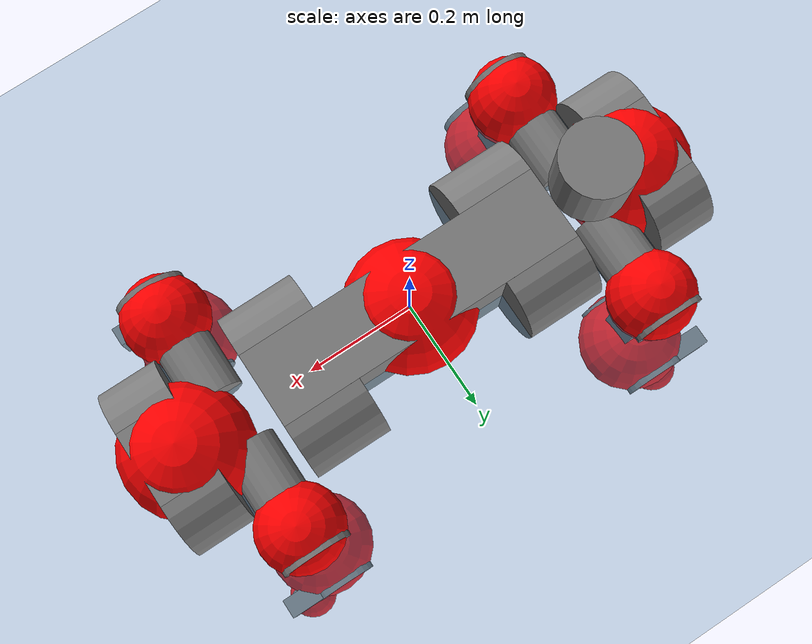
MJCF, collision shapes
<mujoco model="anymal_c">
  <compiler angle="radian" assetdir="assets" balanceinertia="true" inertiafromgeom="false"/>

  <option timestep="0.005" density="1.2" viscosity="2e-05"/>

  <size nkey="1"/>

  <visual>
    <quality shadowsize="8192"/>
    <map shadowclip="0.5"/>
  </visual>

  <default>
    <default class="/">
      <material specular="0" shininess="0.25"/>
      <geom contype="0" conaffinity="0" group="1" solref="-1000 -80"/>
      <site size="0.01 0.005 0.005" group="5"/>
      <general forcelimited="true" forcerange="-80 80" biastype="affine" gainprm="80" biasprm="0 -80 -2"/>
      <default class="anymal_c">
        <joint armature="0.01" damping="0.01" frictionloss="0.1"/>
        <default class="visual">
          <geom type="mesh" group="2"/>
          <default class="visual_zflip"/>
        </default>
        <default class="collision">
          <geom type="cylinder" group="3"/>
          <default class="foot">
            <geom size="0.03 0 0" type="sphere" condim="6" priority="1" friction="0.8 0.02 0.01" solimp="0.015 1 0.03"/>
          </default>
        </default>
      </default>
      <default class="reward_collision_sphere">
        <geom group="5" rgba="1 0 0 1"/>
      </default>
    </default>
  </default>

  <asset>
    <texture type="skybox" colorspace="auto" name="//unnamed_texture_0" builtin="gradient" rgb1="0.95 0.95 0.95" rgb2="0.95 0.95 0.95" width="100" height="600"/>
    <texture type="2d" colorspace="auto" name="texplane" builtin="checker" rgb1="0.345 0.575 0.748" rgb2="0.345 0.575 0.748" markrgb="1 1 1" width="512" height="512"/>
    <texture type="2d" colorspace="linear" name="base" file="base.png"/>
    <texture type="2d" colorspace="linear" name="top_shell" file="top_shell.png"/>
    <texture type="2d" colorspace="linear" name="bottom_shell" file="bottom_shell.png"/>
    <texture type="2d" colorspace="linear" name="remote" file="remote.png"/>
    <texture type="2d" colorspace="linear" name="hatch" file="hatch.png"/>
    <texture type="2d" colorspace="linear" name="handle" file="handle.png"/>
    <texture type="2d" colorspace="linear" name="face" file="face.png"/>
    <texture type="2d" colorspace="linear" name="battery" file="battery.png"/>
    <texture type="2d" colorspace="linear" name="lidar_cage" file="lidar_cage.png"/>
    <texture type="2d" colorspace="linear" name="depth_camera" file="depth_camera.png"/>
    <texture type="2d" colorspace="linear" name="wide_angle_camera" file="wide_angle_camera.png"/>
    <texture type="2d" colorspace="linear" name="lidar" file="lidar.png"/>
    <texture type="2d" colorspace="linear" name="drive" file="drive.png"/>
    <texture type="2d" colorspace="linear" name="hip_l" file="hip_l.png"/>
    <texture type="2d" colorspace="linear" name="shank_l" file="shank_l.png"/>
    <texture type="2d" colorspace="linear" name="foot" file="foot.png"/>
    <texture type="2d" colorspace="linear" name="thigh" file="thigh.png"/>
    <texture type="2d" colorspace="linear" name="shank_r" file="shank_r.png"/>
    <texture type="2d" colorspace="linear" name="hip_r" file="hip_r.png"/>
    <material name="MatPlane" class="/" texture="texplane" texuniform="true" texrepeat="2 2" specular="0.9" shininess="0.5"/>
    <material name="black_plastic" class="/" rgba="0.007 0.007 0.007 1"/>
    <material name="green" class="/" rgba="0.052 0.178 0.033 1"/>
    <material name="red" class="/" rgba="0.178 0.006 0.005 1"/>
    <material name="yellow" class="/" rgba="0.178 0.119 0.006 1"/>
    <material name="lwl" class="/" rgba="0.8 0.8 0.8 1"/>
    <material name="base" class="/" texture="base"/>
    <material name="top_shell" class="/" texture="top_shell"/>
    <material name="bottom_shell" class="/" texture="bottom_shell"/>
    <material name="hip_l" class="/" texture="hip_l"/>
    <material name="thigh" class="/" texture="thigh"/>
    <material name="shank_l" class="/" texture="shank_l"/>
    <material name="foot" class="/" texture="foot"/>
    <material name="hip_r" class="/" texture="hip_r"/>
    <material name="shank" class="/" texture="shank_r"/>
    <material name="hatch" class="/" texture="hatch"/>
    <material name="remote" class="/" texture="remote"/>
    <material name="handle" class="/" texture="handle"/>
    <material name="face" class="/" texture="face"/>
    <material name="depth_camera" class="/" texture="depth_camera"/>
    <material name="wide_angle_camera" class="/" texture="wide_angle_camera"/>
    <material name="battery" class="/" texture="battery"/>
    <material name="lidar_cage" class="/" texture="lidar_cage"/>
    <material name="lidar" class="/" texture="lidar"/>
    <material name="drive" class="/" texture="drive"/>
    <mesh name="base_0" class="/" file="base_0.obj"/>
    <mesh name="base_1" class="/" file="base_1.obj"/>
    <mesh name="base_2" class="/" file="base_2.obj"/>
    <mesh name="base_3" class="/" file="base_3.obj"/>
    <mesh name="base_4" class="/" file="base_4.obj"/>
    <mesh name="base_5" class="/" file="base_5.obj"/>
    <mesh name="top_shell" class="/" file="top_shell.obj"/>
    <mesh name="bottom_shell" class="/" file="bottom_shell.obj"/>
    <mesh name="remote" class="/" file="remote.obj"/>
    <mesh name="handle" class="/" file="handle.obj"/>
    <mesh name="face" class="/" file="face.obj"/>
    <mesh name="wide_angle_camera" class="/" file="wide_angle_camera.obj"/>
    <mesh name="depth_camera" class="/" file="depth_camera.obj"/>
    <mesh name="battery" class="/" file="battery.obj"/>
    <mesh name="lidar_cage" class="/" file="lidar_cage.obj"/>
    <mesh name="lidar" class="/" file="lidar.obj"/>
    <mesh name="drive" class="/" file="drive.obj"/>
    <mesh name="hip_l" class="/" file="hip_l.obj"/>
    <mesh name="thigh" class="/" file="thigh.obj"/>
    <mesh name="shank_l" class="/" file="shank_l.obj"/>
    <mesh name="foot" class="/" file="foot.obj"/>
    <mesh name="hip_r" class="/" file="hip_r.obj"/>
    <mesh name="hatch" class="/" file="hatch.obj"/>
    <mesh name="shank_r" class="/" file="shank_r.obj"/>
  </asset>

  <worldbody>
    <geom name="floor" class="/" size="100 100 0.125" type="plane" group="0" material="MatPlane"/>
    <light name="toplight_shadow" class="/" pos="0 0 5" dir="0.0990148 0.0990148 -0.990148" type="directional" ambient="0.04 0.04 0.04" diffuse="0.55 0.55 0.55" specular="0.12 0.12 0.12"/>
    <light name="toplight_fill" class="/" pos="0 0 5" dir="0.0990148 0.0990148 -0.990148" type="directional" castshadow="false" ambient="0.04 0.04 0.04" diffuse="0.3 0.3 0.3" specular="0.08 0.08 0.08"/>
    <body name="trunk" childclass="anymal_c" pos="-5.39195e-05 8.22232e-05 0.000726314" quat="1 2.18326e-05 5.71333e-05 5.33078e-05">
      <inertial pos="0.00261794 -0.000345994 0.0480216" quat="0.500189 0.499986 0.499907 0.499918" mass="17.6232" diaginertia="0.579801 0.576224 0.191305"/>
      <joint name="//unnamed_joint_0" type="free" armature="0" damping="0" frictionloss="0"/>
      <geom name="//unnamed_geom_1" class="visual" material="green" mesh="base_0"/>
      <geom name="//unnamed_geom_2" class="visual" material="yellow" mesh="base_1"/>
      <geom name="//unnamed_geom_3" class="visual" material="red" mesh="base_2"/>
      <geom name="//unnamed_geom_4" class="visual" material="black_plastic" mesh="base_3"/>
      <geom name="//unnamed_geom_5" class="visual" material="lwl" mesh="base_4"/>
      <geom name="//unnamed_geom_6" class="visual" material="base" mesh="base_5"/>
      <geom name="trunk_1" class="collision" size="0.285136 0.0688259 0.0884905" type="box"/>
      <geom name="trunk_2" class="collision" size="0.0884905 0.071284" pos="0.213963 0.0690836 0" quat="0.707107 0 0.707107 0"/>
      <geom name="trunk_3" class="collision" size="0.0884905 0.071284" pos="-0.213963 0.0690836 0" quat="0.707107 0 0.707107 0"/>
      <geom name="trunk_4" class="collision" size="0.0884905 0.071284" pos="0.213963 -0.0690836 0" quat="0.707107 0 0.707107 0"/>
      <geom name="trunk_5" class="collision" size="0.0884905 0.071284" pos="-0.213963 -0.0690836 0" quat="0.707107 0 0.707107 0"/>
      <geom name="//unnamed_geom_12" class="visual" material="top_shell" mesh="top_shell"/>
      <geom name="//unnamed_geom_13" class="visual" material="bottom_shell" mesh="bottom_shell"/>
      <geom name="//unnamed_geom_14" class="visual" material="remote" mesh="remote"/>
      <geom name="//unnamed_geom_15" class="visual" material="handle" mesh="handle"/>
      <geom name="//unnamed_geom_16" class="visual" pos="0.40776 0 0" quat="1 0 0 0" material="face" mesh="face"/>
      <geom name="trunk_6" class="collision" size="0.0540775 0.0688259 0.0884905" pos="0.461866 0 0" type="box"/>
      <geom name="//unnamed_geom_18" class="collision" size="0.0884905 0.0540775" pos="0.461866 0.0690836 0" quat="0.707107 0 0.707107 0"/>
      <geom name="//unnamed_geom_19" class="collision" size="0.0884905 0.0540775" pos="0.461866 -0.0690836 0" quat="0.707107 0 0.707107 0"/>
      <geom name="//unnamed_geom_20" class="visual" pos="0.454143 0 -0.028552" quat="0.965926 0 0.258819 0" material="depth_camera" mesh="depth_camera"/>
      <geom name="//unnamed_geom_21" class="visual" pos="0.504658 0 0.0146561" material="wide_angle_camera" mesh="wide_angle_camera"/>
      <geom name="//unnamed_geom_22" class="visual_zflip" pos="-0.40776 0 0" quat="0 0 0 1" material="face" mesh="face"/>
      <geom name="trunk_7" class="collision" size="0.0540775 0.0688259 0.0884905" pos="-0.461866 0 0" quat="0 0 0 1" type="box"/>
      <geom name="//unnamed_geom_24" class="collision" size="0.0884905 0.0540775" pos="-0.461866 -0.0690836 0" quat="0 -0.707107 0 0.707107"/>
      <geom name="//unnamed_geom_25" class="collision" size="0.0884905 0.0540775" pos="-0.461866 0.0690836 0" quat="0 -0.707107 0 0.707107"/>
      <geom name="//unnamed_geom_26" class="visual" pos="-0.454143 0 -0.028552" quat="0 -0.258819 0 0.965926" material="depth_camera" mesh="depth_camera"/>
      <geom name="//unnamed_geom_27" class="visual_zflip" pos="-0.504658 0 0.0146561" quat="0 0 0 1" material="wide_angle_camera" mesh="wide_angle_camera"/>
      <geom name="//unnamed_geom_28" class="visual" material="battery" mesh="battery"/>
      <geom name="//unnamed_geom_29" class="visual" pos="0 0.0755005 0.0284767" quat="0.683013 -0.183013 0.183013 0.683013" material="depth_camera" mesh="depth_camera"/>
      <geom name="//unnamed_geom_30" class="visual" pos="0 -0.0755005 0.0284767" quat="0.683013 0.183013 0.183013 -0.683013" material="depth_camera" mesh="depth_camera"/>
      <geom name="//unnamed_geom_31" class="visual" pos="-0.358081 0 0.071959" quat="1 0 0 0" material="lidar_cage" mesh="lidar_cage"/>
      <geom name="trunk_8" class="collision" size="0.0688259 0.0589937" pos="-0.358081 0 0.130701"/>
      <geom name="//unnamed_geom_33" class="visual" pos="-0.358081 1.24521e-06 0.139219" quat="0.707107 0 0 -0.707107" material="lidar" mesh="lidar"/>
      <geom name="//unnamed_geom_34" class="visual" pos="0.295023 0.102636 1.3584e-10" quat="0.258819 0.965926 0 0" material="drive" mesh="drive"/>
      <geom name="//unnamed_geom_35" class="visual" pos="0.295023 -0.102636 -1.3584e-10" quat="0.258819 -0.965926 0 0" material="drive" mesh="drive"/>
      <geom name="//unnamed_geom_36" class="visual" pos="-0.295023 0.102636 -1.3584e-10" quat="0 0 0.965926 -0.258819" material="drive" mesh="drive"/>
      <geom name="//unnamed_geom_37" class="visual" pos="-0.295023 -0.102636 1.3584e-10" quat="0 0 -0.965926 -0.258819" material="drive" mesh="drive"/>
      <geom name="//unnamed_geom_38" class="visual" pos="0.114114 0 0.0714695" quat="1 0 0 0" material="hatch" mesh="hatch"/>
      <geom name="//unnamed_geom_39" class="reward_collision_sphere" size="0.117987"/>
      <geom name="//unnamed_geom_40" class="reward_collision_sphere" size="0.117987" pos="0.442683 0 0"/>
      <geom name="//unnamed_geom_41" class="reward_collision_sphere" size="0.117987" pos="-0.442683 0 0"/>
      <site name="imu" pos="0.239547 0.00635195 0.046252" size="0.00983228"/>
      <camera name="track" pos="0 -1.97382 0" quat="0.707107 0.707107 0 0" mode="trackcom"/>
      <camera name="ego_camera" pos="0.442683 0 -0.0391614" quat="-0.5 -0.5 0.5 0.5"/>
      <body name="LF_HIP" pos="0.295781 0.10249 6.01669e-05" quat="0.258614 0.965981 -0.000448733 -0.000147177">
        <inertial pos="0.0560976 -0.0139546 -0.00780147" quat="-0.130518 0.71115 -0.131912 0.678108" mass="2.63931" diaginertia="0.00537879 0.00461143 0.00296604"/>
        <joint name="LF_HAA" pos="0 0 0" axis="1 7.22973e-05 2.48244e-05" range="-0.714788 0.471905" armature="0.0101947" damping="0.00412543" frictionloss="0.0957958"/>
        <geom name="//unnamed_geom_42" class="visual" pos="0 7.99084e-06 -1.31249e-06" quat="0.258819 -0.965926 0 0" material="hip_l" mesh="hip_l"/>
        <geom name="//unnamed_geom_43" class="visual" pos="0.058926 -0.0714403 -0.0411878" quat="0.183013 -0.683013 0.683013 0.183013" material="drive" mesh="drive"/>
        <geom name="//unnamed_geom_44" class="collision" size="0.0491614 0.0688259" pos="0.058926 -0.0118032 -0.00676023" quat="-0.353553 -0.612372 0.612372 -0.353553"/>
        <body name="LF_THIGH" pos="0.0591722 -0.0723252 -0.041891" quat="0.183009 -0.683004 0.683025 0.183003">
          <inertial pos="0.0297013 -4.86313e-05 -0.240111" quat="0.993092 -0.00470817 -0.0809728 0.0847857" mass="2.87478" diaginertia="0.0276185 0.0278965 0.00372621"/>
          <joint name="LF_HFE" pos="0 0 0" axis="0.999995 -0.00287206 -0.00164359" stiffness="9.13674e-05" range="-3.14613 3.14884" armature="0.0100598" damping="0.00955053" frictionloss="0.0974727"/>
          <geom name="//unnamed_geom_45" class="visual" pos="-6.30605e-05 -9.93687e-08 0" quat="0.707107 0 0 -0.707107" material="thigh" mesh="thigh"/>
          <geom name="//unnamed_geom_46" class="collision" size="0.0639098 0.0393291" pos="0.0393496 0 0" quat="0.5 0.5 -0.5 -0.5"/>
          <geom name="//unnamed_geom_47" class="collision" size="0.036871 0.0294968 0.138944" pos="0.0295122 0 -0.138351" quat="0.707107 0 0 -0.707107" type="box"/>
          <geom name="//unnamed_geom_48" class="visual" pos="0.0986691 0 -0.279025" quat="1 0 0 0" material="drive" mesh="drive"/>
          <geom name="//unnamed_geom_49" class="collision" size="0.0491614 0.0688259" pos="0.0298073 0 -0.279025" quat="0.707107 0 0.707107 0"/>
          <geom name="//unnamed_geom_50" class="reward_collision_sphere" size="0.0786582" pos="0.0245935 0 0"/>
          <body name="LF_SHANK" pos="0.0981377 -1.7401e-06 -0.279898" quat="1 6.38228e-05 -8.01757e-06 3.72409e-05">
            <inertial pos="0.00491444 -0.0604993 -0.0793784" quat="0.992993 -0.115608 -0.000166622 -0.0244889" mass="0.567846" diaginertia="0.00948094 0.00865751 0.00101266"/>
            <joint name="LF_KFE" pos="0 0 0" axis="1 0.000326696 0.000273172" range="-3.12483 3.13148" armature="0.00934742" damping="0.00701193" frictionloss="0.0940035"/>
            <geom name="//unnamed_geom_51" class="visual" pos="-2.05627e-05 -0.000109641 0" quat="0.707107 0 0 -0.707107" material="shank_l" mesh="shank_l"/>
            <geom name="LF_kfe_act" class="collision" size="0.0589937 0.0196646" pos="0.0196748 0 0" quat="0.5 0.5 -0.5 -0.5"/>
            <geom name="//unnamed_geom_53" class="collision" size="0.0565346 0.0331839 0.0186813" pos="0.0196748 -0.0567463 0" quat="0.5 0.5 -0.5 -0.5" type="box"/>
            <geom name="//unnamed_geom_54" class="visual" pos="0.0128378 -0.086834 -0.330884" quat="0.382683 0 0 -0.92388" material="foot" mesh="foot"/>
            <geom name="LF_calf" class="collision" size="0.0172065 0.138883" pos="0.0128378 -0.0867986 -0.165442" quat="0.707107 0 0 -0.707107"/>
            <geom name="LF_foot" class="foot" size="0.0318557" pos="0.0128378 -0.0867986 -0.308856" quat="0.707107 0 0 -0.707107"/>
            <geom name="//unnamed_geom_57" class="reward_collision_sphere" size="0.0983228" pos="-0.049187 0 0"/>
            <geom name="//unnamed_geom_58" class="reward_collision_sphere" size="0.0491614" pos="0.0128378 -0.0867986 -0.308856"/>
            <site name="LF_foot" class="foot" pos="0.0128378 -0.0867986 -0.308856" quat="0.707107 0 0 -0.707107" size="0.00983228"/>
          </body>
        </body>
      </body>
      <body name="RF_HIP" pos="0.296389 -0.103317 0.000619944" quat="0.25884 -0.96592 -5.85937e-05 -4.23782e-05">
        <inertial pos="0.0560121 0.0153443 -0.00828969" quat="0.1345 0.679276 0.128279 0.709957" mass="2.60363" diaginertia="0.00538554 0.00450167 0.00293051"/>
        <joint name="RF_HAA" pos="0 0 0" axis="1 7.39897e-05 0.000257944" stiffness="0.000633743" range="-0.50158 0.730153" armature="0.00980367" damping="0.0091979" frictionloss="0.0971093"/>
        <geom name="//unnamed_geom_59" class="visual" pos="0 -7.99077e-06 -1.31249e-06" quat="0.258819 0.965926 0 0" material="hip_r" mesh="hip_r"/>
        <geom name="//unnamed_geom_60" class="visual" pos="0.058926 0.0714403 -0.0411878" quat="0.183013 0.683013 0.683013 -0.183013" material="drive" mesh="drive"/>
        <geom name="//unnamed_geom_61" class="collision" size="0.0491614 0.0688259" pos="0.058926 0.0118032 -0.00676023" quat="-0.353553 0.612372 0.612372 0.353553"/>
        <body name="RF_THIGH" pos="0.0598349 0.0723129 -0.0407633" quat="0.18311 0.682964 0.683017 -0.183081">
          <inertial pos="0.0302524 0.000421778 -0.240401" quat="0.992804 -0.00525056 -0.0804835 0.0885157" mass="2.91102" diaginertia="0.0280203 0.0278327 0.00374636"/>
          <joint name="RF_HFE" pos="0 0 0" axis="1 -2.31793e-05 0.000144061" stiffness="0.00588825" range="-3.12223 3.12273" armature="0.00986756" damping="0.00925246" frictionloss="0.105149"/>
          <geom name="//unnamed_geom_62" class="visual" pos="-6.30605e-05 -9.93687e-08 0" quat="0.707107 0 0 -0.707107" material="thigh" mesh="thigh"/>
          <geom name="//unnamed_geom_63" class="collision" size="0.0639098 0.0393291" pos="0.0393496 0 0" quat="0.5 0.5 0.5 0.5"/>
          <geom name="//unnamed_geom_64" class="collision" size="0.036871 0.0294968 0.138944" pos="0.0295122 0 -0.138351" quat="0.707107 0 0 0.707107" type="box"/>
          <geom name="//unnamed_geom_65" class="visual" pos="0.0986691 0 -0.279025" quat="1 0 0 0" material="drive" mesh="drive"/>
          <geom name="//unnamed_geom_66" class="collision" size="0.0491614 0.0688259" pos="0.0298073 0 -0.279025" quat="0.707107 0 0.707107 0"/>
          <geom name="//unnamed_geom_67" class="reward_collision_sphere" size="0.0786582" pos="0.0245935 0 0"/>
          <body name="RF_SHANK" pos="0.0988733 -0.000469806 -0.279552" quat="1 -8.45645e-05 -4.18123e-05 -5.02438e-05">
            <inertial pos="0.00537509 0.0607922 -0.0782004" quat="0.993179 0.114594 0.00101515 0.0214982" mass="0.555502" diaginertia="0.00924432 0.00867047 0.00100169"/>
            <joint name="RF_KFE" pos="0 0 0" axis="1 0.000539948 -0.00033841" range="-3.11741 3.11913" armature="0.00988928" damping="0.0108573" frictionloss="0.0943332"/>
            <geom name="//unnamed_geom_68" class="visual" pos="-2.05626e-05 0.000109641 0" quat="0.707107 0 0 0.707107" material="shank" mesh="shank_r"/>
            <geom name="RF_kfe_act" class="collision" size="0.0589937 0.0196646" pos="0.0196748 0 0" quat="0.5 0.5 0.5 0.5"/>
            <geom name="//unnamed_geom_70" class="collision" size="0.0565346 0.0331839 0.0186813" pos="0.0196748 0.0567463 0" quat="0.5 0.5 0.5 0.5" type="box"/>
            <geom name="//unnamed_geom_71" class="visual" pos="0.0128378 0.086834 -0.330884" quat="0.382683 0 0 0.92388" material="foot" mesh="foot"/>
            <geom name="RF_calf" class="collision" size="0.0172065 0.138883" pos="0.0128378 0.0867986 -0.165442" quat="0.707107 0 0 0.707107"/>
            <geom name="RF_foot" class="foot" size="0.0280594" pos="0.0128378 0.0867986 -0.308856" quat="0.707107 0 0 0.707107"/>
            <geom name="//unnamed_geom_74" class="reward_collision_sphere" size="0.0983228" pos="-0.049187 0 0"/>
            <geom name="//unnamed_geom_75" class="reward_collision_sphere" size="0.0491614" pos="0.0128378 0.0867986 -0.308856"/>
            <site name="RF_foot" class="foot" pos="0.0128378 0.0867986 -0.308856" quat="0.707107 0 0 0.707107" size="0.00983228"/>
          </body>
        </body>
      </body>
      <body name="LH_HIP" pos="-0.295167 0.102503 -0.000169207" quat="5.53636e-05 0.000138962 0.965937 -0.258776">
        <inertial pos="0.0551159 0.0152649 -0.00849208" quat="0.138151 0.676388 0.127333 0.71218" mass="2.62549" diaginertia="0.00541647 0.00465658 0.00295314"/>
        <joint name="LH_HAA" pos="0 0 0" axis="1 -0.000373931 -0.000299434" range="-0.500527 0.695559" armature="0.00966128" damping="0.0129859" frictionloss="0.0998342"/>
        <geom name="//unnamed_geom_76" class="visual" pos="0 -7.99077e-06 -1.31249e-06" quat="-0.258819 -0.965926 0 0" material="hip_r" mesh="hip_r"/>
        <geom name="//unnamed_geom_77" class="visual" pos="0.058926 0.0714403 -0.0411878" quat="0.183013 0.683013 0.683013 -0.183013" material="drive" mesh="drive"/>
        <geom name="//unnamed_geom_78" class="collision" size="0.0491614 0.0688259" pos="0.058926 0.0118032 -0.00676023" quat="-0.353553 0.612372 0.612372 0.353553"/>
        <body name="LH_THIGH" pos="0.0590317 0.0709102 -0.0410215" quat="0.183133 0.683034 0.682927 -0.183132">
          <inertial pos="0.0304182 -0.000361243 -0.240839" quat="0.992719 -0.00549705 -0.0812449 0.0887617" mass="2.92258" diaginertia="0.0278663 0.0283325 0.00376774"/>
          <joint name="LH_HFE" pos="0 0 0" axis="0.999998 0.000614961 -0.00162688" range="-3.14152 3.13694" armature="0.0102638" damping="0.0128357" frictionloss="0.0968284"/>
          <geom name="//unnamed_geom_79" class="visual" pos="-6.30605e-05 -9.93687e-08 0" quat="0.707107 0 0 -0.707107" material="thigh" mesh="thigh"/>
          <geom name="//unnamed_geom_80" class="collision" size="0.0639098 0.0393291" pos="0.0393496 0 0" quat="0.5 0.5 -0.5 -0.5"/>
          <geom name="//unnamed_geom_81" class="collision" size="0.036871 0.0294968 0.138944" pos="0.0295122 0 -0.138351" quat="0.707107 0 0 -0.707107" type="box"/>
          <geom name="//unnamed_geom_82" class="visual" pos="0.0986691 0 -0.279025" quat="1 0 0 0" material="drive" mesh="drive"/>
          <geom name="//unnamed_geom_83" class="collision" size="0.0491614 0.0688259" pos="0.0298073 0 -0.279025" quat="0.707107 0 0.707107 0"/>
          <geom name="//unnamed_geom_84" class="reward_collision_sphere" size="0.0786582" pos="0.0245935 0 0"/>
          <body name="LH_SHANK" pos="0.0999973 -0.000863727 -0.279012" quat="1 0.00018561 5.14839e-05 6.83863e-05">
            <inertial pos="0.00540361 0.060479 -0.0790436" quat="0.992925 0.116906 0.00340925 0.0205467" mass="0.56019" diaginertia="0.00934255 0.00868574 0.000994234"/>
            <joint name="LH_KFE" pos="0 0 0" axis="1 -0.000393699 0.000232324" range="-3.15026 3.14222" armature="0.0100503" damping="0.00899829" frictionloss="0.0942268"/>
            <geom name="//unnamed_geom_85" class="visual" pos="-2.05626e-05 0.000109641 0" quat="-0.707107 0 0 -0.707107" material="shank" mesh="shank_r"/>
            <geom name="LH_kfe_act" class="collision" size="0.0589937 0.0196646" pos="0.0196748 0 0" quat="0.5 0.5 -0.5 -0.5"/>
            <geom name="//unnamed_geom_87" class="collision" size="0.0565346 0.0331839 0.0186813" pos="0.0196748 0.0567463 0" quat="0.5 0.5 -0.5 -0.5" type="box"/>
            <geom name="//unnamed_geom_88" class="visual" pos="0.0128378 0.086834 -0.330884" quat="-0.382683 0 0 -0.92388" material="foot" mesh="foot"/>
            <geom name="LH_calf" class="collision" size="0.0172065 0.138883" pos="0.0128378 0.0867986 -0.165442" quat="0.707107 0 0 -0.707107"/>
            <geom name="LH_foot" class="foot" size="0.0315004" pos="0.0128378 0.0867986 -0.308856" quat="0.707107 0 0 -0.707107"/>
            <geom name="//unnamed_geom_91" class="reward_collision_sphere" size="0.0983228" pos="-0.049187 0 0"/>
            <geom name="//unnamed_geom_92" class="reward_collision_sphere" size="0.0491614" pos="0.0128378 0.0867986 -0.308856"/>
            <site name="LH_foot" class="foot" pos="0.0128378 0.0867986 -0.308856" quat="0.707107 0 0 -0.707107" size="0.00983228"/>
          </body>
        </body>
      </body>
      <body name="RH_HIP" pos="-0.295056 -0.103192 0.000478983" quat="-3.66795e-05 -3.34041e-05 -0.965938 -0.258774">
        <inertial pos="0.0552379 -0.0153584 -0.00827914" quat="-0.127311 0.70949 -0.135112 0.679824" mass="2.67399" diaginertia="0.0054645 0.00465586 0.00296138"/>
        <joint name="RH_HAA" pos="0 0 0" axis="0.999999 9.31782e-05 0.00123135" stiffness="0.0023276" range="-0.722746 0.512232" armature="0.00980564" damping="0.0132591" frictionloss="0.0979625"/>
        <geom name="//unnamed_geom_93" class="visual" pos="0 7.99084e-06 -1.31249e-06" quat="-0.258819 0.965926 0 0" material="hip_l" mesh="hip_l"/>
        <geom name="//unnamed_geom_94" class="visual" pos="0.058926 -0.0714403 -0.0411878" quat="-0.183013 0.683013 -0.683013 -0.183013" material="drive" mesh="drive"/>
        <geom name="//unnamed_geom_95" class="collision" size="0.0491614 0.0688259" pos="0.058926 -0.0118032 -0.00676023" quat="0.353553 0.612372 -0.612372 0.353553"/>
        <body name="RH_THIGH" pos="0.0586254 -0.0708091 -0.0404542" quat="-0.182859 0.683006 -0.683023 -0.183154">
          <inertial pos="0.0298255 -0.000387968 -0.239853" quat="0.99315 -0.00524405 -0.0806385 0.0843928" mass="2.8414" diaginertia="0.0274366 0.0274649 0.003726"/>
          <joint name="RH_HFE" pos="0 0 0" axis="1 -0.00023119 -0.000541197" range="-3.14553 3.14264" armature="0.0101157" damping="0.0099119" frictionloss="0.0984711"/>
          <geom name="//unnamed_geom_96" class="visual" pos="-6.30605e-05 -9.93687e-08 0" quat="0.707107 0 0 -0.707107" material="thigh" mesh="thigh"/>
          <geom name="//unnamed_geom_97" class="collision" size="0.0639098 0.0393291" pos="0.0393496 0 0" quat="0.5 0.5 0.5 0.5"/>
          <geom name="//unnamed_geom_98" class="collision" size="0.036871 0.0294968 0.138944" pos="0.0295122 0 -0.138351" quat="0.707107 0 0 0.707107" type="box"/>
          <geom name="//unnamed_geom_99" class="visual" pos="0.0986691 0 -0.279025" quat="1 0 0 0" material="drive" mesh="drive"/>
          <geom name="//unnamed_geom_100" class="collision" size="0.0491614 0.0688259" pos="0.0298073 0 -0.279025" quat="0.707107 0 0.707107 0"/>
          <geom name="//unnamed_geom_101" class="reward_collision_sphere" size="0.0786582" pos="0.0245935 0 0"/>
          <body name="RH_SHANK" pos="0.0978401 -0.000428342 -0.27948" quat="1 -2.65521e-05 -0.000264946 -0.000389088">
            <inertial pos="0.00592183 -0.060315 -0.0793039" quat="0.992931 -0.11597 -0.00136691 -0.0252345" mass="0.55964" diaginertia="0.00945317 0.00861325 0.00100111"/>
            <joint name="RH_KFE" pos="0 0 0" axis="0.999962 -0.00243336 -0.00833043" range="-3.13525 3.13781" armature="0.00941678" damping="0.00748356" frictionloss="0.0980726"/>
            <geom name="//unnamed_geom_102" class="visual" pos="-2.05627e-05 -0.000109641 0" quat="0.707107 0 0 -0.707107" material="shank_l" mesh="shank_l"/>
            <geom name="RH_kfe_act" class="collision" size="0.0589937 0.0196646" pos="0.0196748 0 0" quat="0.5 0.5 0.5 0.5"/>
            <geom name="//unnamed_geom_104" class="collision" size="0.0565346 0.0331839 0.0186813" pos="0.0196748 -0.0567463 0" quat="0.5 0.5 0.5 0.5" type="box"/>
            <geom name="//unnamed_geom_105" class="visual" pos="0.0128378 -0.086834 -0.330884" quat="0.382683 0 0 -0.92388" material="foot" mesh="foot"/>
            <geom name="RH_calf" class="collision" size="0.0172065 0.138883" pos="0.0128378 -0.0867986 -0.165442" quat="0.707107 0 0 0.707107"/>
            <geom name="RH_foot" class="foot" size="0.0274245" pos="0.0128378 -0.0867986 -0.308856" quat="0.707107 0 0 0.707107"/>
            <geom name="//unnamed_geom_108" class="reward_collision_sphere" size="0.0983228" pos="-0.049187 0 0"/>
            <geom name="//unnamed_geom_109" class="reward_collision_sphere" size="0.0491614" pos="0.0128378 -0.0867986 -0.308856"/>
            <site name="RH_foot" class="foot" pos="0.0128378 -0.0867986 -0.308856" quat="0.707107 0 0 0.707107" size="0.00983228"/>
          </body>
        </body>
      </body>
    </body>
  </worldbody>

  <contact>
    <pair class="/" geom1="floor" geom2="LF_foot" name="//unnamed_contact_0"/>
    <pair class="/" geom1="floor" geom2="RF_foot" name="//unnamed_contact_1"/>
    <pair class="/" geom1="floor" geom2="LH_foot" name="//unnamed_contact_2"/>
    <pair class="/" geom1="floor" geom2="RH_foot" name="//unnamed_contact_3"/>
  </contact>

  <actuator>
    <general name="LF_HAA" class="/" joint="LF_HAA" forcerange="-77.9622 77.9622" gainprm="82.5166" biasprm="0 -82.5166 -1.95988"/>
    <general name="LF_HFE" class="/" joint="LF_HFE" forcerange="-81.4899 81.4899" gainprm="82.5166" biasprm="0 -82.5166 -1.95988"/>
    <general name="LF_KFE" class="/" joint="LF_KFE" forcerange="-77.7771 77.7771" gainprm="82.5166" biasprm="0 -82.5166 -1.95988"/>
    <general name="RF_HAA" class="/" joint="RF_HAA" forcerange="-81.8484 81.8484" gainprm="82.5166" biasprm="0 -82.5166 -1.95988"/>
    <general name="RF_HFE" class="/" joint="RF_HFE" forcerange="-76.8624 76.8624" gainprm="82.5166" biasprm="0 -82.5166 -1.95988"/>
    <general name="RF_KFE" class="/" joint="RF_KFE" forcerange="-78.9864 78.9864" gainprm="82.5166" biasprm="0 -82.5166 -1.95988"/>
    <general name="LH_HAA" class="/" joint="LH_HAA" forcerange="-79.0836 79.0836" gainprm="82.5166" biasprm="0 -82.5166 -1.95988"/>
    <general name="LH_HFE" class="/" joint="LH_HFE" forcerange="-79.2969 79.2969" gainprm="82.5166" biasprm="0 -82.5166 -1.95988"/>
    <general name="LH_KFE" class="/" joint="LH_KFE" forcerange="-78.5271 78.5271" gainprm="82.5166" biasprm="0 -82.5166 -1.95988"/>
    <general name="RH_HAA" class="/" joint="RH_HAA" forcerange="-78.8738 78.8738" gainprm="82.5166" biasprm="0 -82.5166 -1.95988"/>
    <general name="RH_HFE" class="/" joint="RH_HFE" forcerange="-76.8418 76.8418" gainprm="82.5166" biasprm="0 -82.5166 -1.95988"/>
    <general name="RH_KFE" class="/" joint="RH_KFE" forcerange="-78.3143 78.3143" gainprm="82.5166" biasprm="0 -82.5166 -1.95988"/>
  </actuator>

  <sensor>
    <gyro site="imu" name="imu_angular_velocity"/>
    <velocimeter site="imu" name="imu_linear_velocity"/>
    <framelinvel objtype="site" objname="LF_foot" name="LF_foot_global_linear_velocity"/>
    <framelinvel objtype="site" objname="RF_foot" name="RF_foot_global_linear_velocity"/>
    <framelinvel objtype="site" objname="LH_foot" name="LH_foot_global_linear_velocity"/>
    <framelinvel objtype="site" objname="RH_foot" name="RH_foot_global_linear_velocity"/>
  </sensor>

  <keyframe>
    <key name="home" qpos="0 0 0.55 1 0 0 0 0 0.4 -0.8 0 -0.4 0.8 0 -0.4 0.8 0 0.4 -0.8"/>
  </keyframe>
</mujoco>
